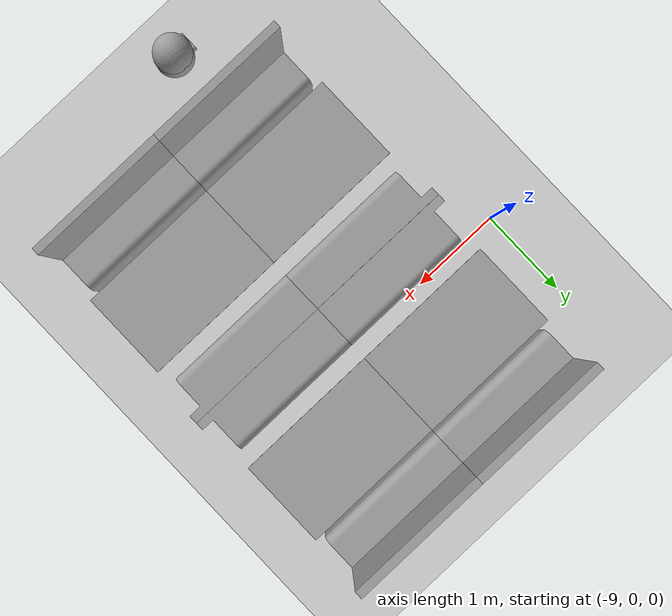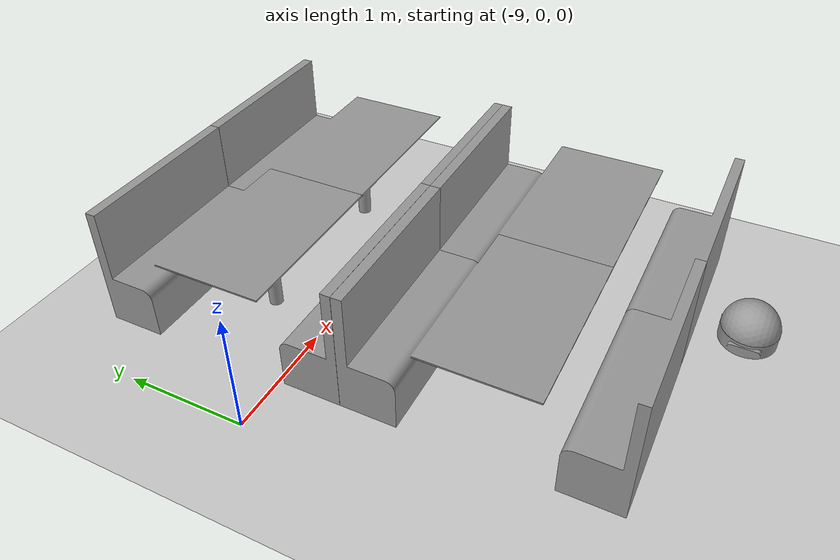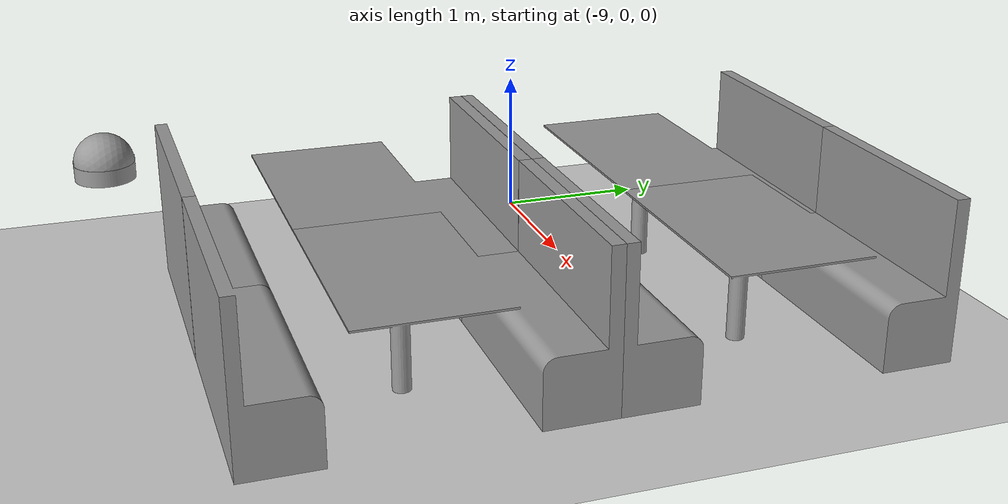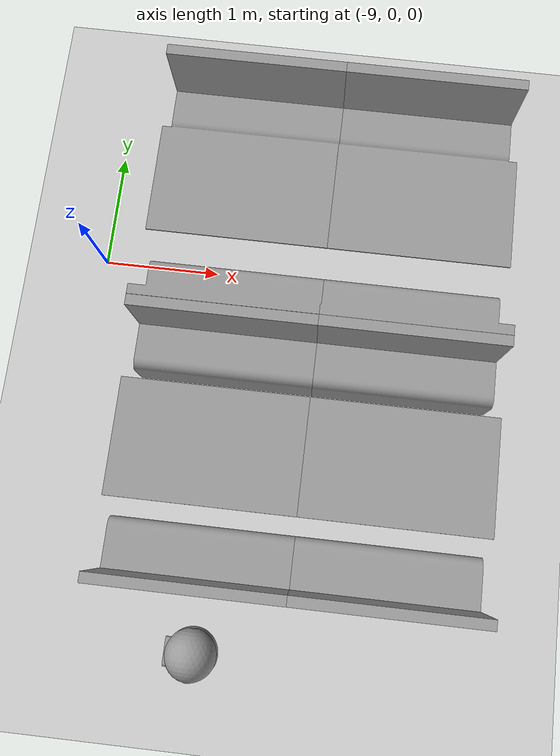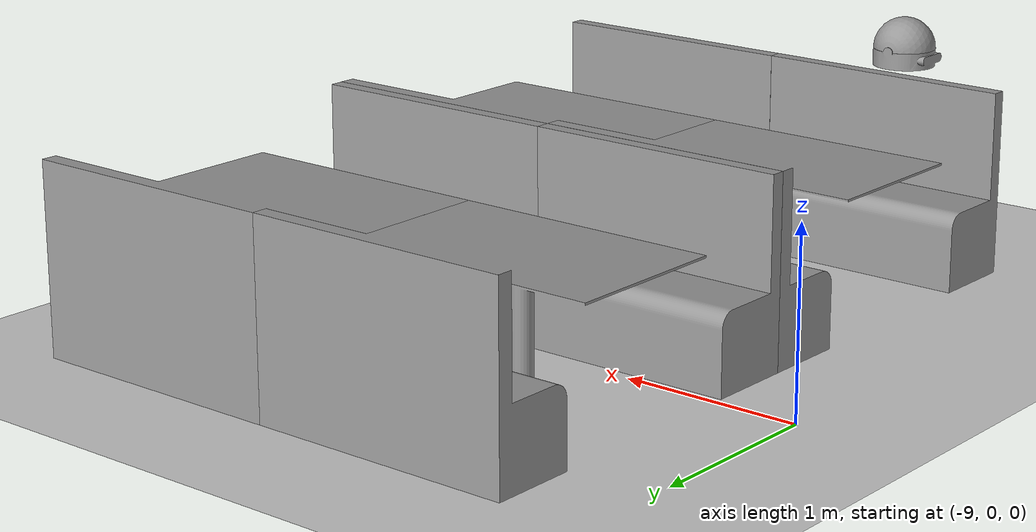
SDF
<sdf version="1.6">
 <world name="default">
  <model name="ground_plane">
   <static>1</static>
   <link name="link">
    <collision name="collision">
     <geometry><plane><normal>0 0 1</normal><size>100 100</size></plane></geometry>
     <surface><friction><ode><mu>100</mu><mu2>50</mu2></ode></friction></surface>
    </collision>
    <visual name="visual">
     <cast_shadows>0</cast_shadows>
     <geometry><plane><normal>0 0 1</normal><size>100 100</size></plane></geometry>
     <material>
      <script><uri>file://media/materials/scripts/gazebo.material</uri><name>Gazebo/Grey</name></script>
     </material>
    </visual>
   </link>
  </model>
  <model name="table_5">
   <link name="link_0">
    <inertial>
     <mass>1</mass>
     <inertia>
      <ixx>0.166667</ixx>
      <ixy>0</ixy>
      <ixz>0</ixz>
      <iyy>0.166667</iyy>
      <iyz>0</iyz>
      <izz>0.166667</izz>
     </inertia>
    </inertial>
    <visual name="visual">
     <pose>-1.9 -1.17 0 0 -0 0</pose>
     <geometry><mesh><uri>model://table/mesh/table.dae</uri><scale>0.6 0.6 0.6</scale></mesh></geometry>
     <material>
      <lighting>1</lighting>
      <script><uri>file://media/materials/scripts/gazebo.material</uri><name>Gazebo/Grey</name></script>
      <shader type="pixel"><normal_map>__default__</normal_map></shader>
      <ambient>0.3 0.3 0.3 1</ambient>
      <diffuse>0.7 0.7 0.7 1</diffuse>
      <specular>0.01 0.01 0.01 1</specular>
      <emissive>0 0 0 1</emissive>
     </material>
    </visual>
    <collision name="collision">
     <geometry><box><size>2.2 1.5 1.1</size></box></geometry>
     <surface>
      <friction>
       <ode><mu>1</mu><mu2>1</mu2><fdir1>0 0 0</fdir1><slip1>0</slip1><slip2>0</slip2></ode>
       <torsional>
        <coefficient>1</coefficient>
        <patch_radius>0</patch_radius>
        <surface_radius>0</surface_radius>
        <use_patch_radius>1</use_patch_radius>
        <ode><slip>0</slip></ode>
       </torsional>
      </friction>
      <bounce><restitution_coefficient>0</restitution_coefficient><threshold>1e+06</threshold></bounce>
      <contact>
       <collide_without_contact>0</collide_without_contact>
       <collide_without_contact_bitmask>1</collide_without_contact_bitmask>
       <collide_bitmask>1</collide_bitmask>
       <ode>
        <soft_cfm>0</soft_cfm>
        <soft_erp>0.2</soft_erp>
        <kp>1e+13</kp>
        <kd>1</kd>
        <max_vel>0.01</max_vel>
        <min_depth>0</min_depth>
       </ode>
       <bullet>
        <split_impulse>1</split_impulse>
        <split_impulse_penetration_threshold>-0.01</split_impulse_penetration_threshold>
        <soft_cfm>0</soft_cfm>
        <soft_erp>0.2</soft_erp>
        <kp>1e+13</kp>
        <kd>1</kd>
       </bullet>
      </contact>
     </surface>
    </collision>
   </link>
   <static>1</static>
   <pose>-6.29706 -1.59971 0 0 -0 1.5708</pose>
  </model>
  <model name="table_15">
   <link name="link_0">
    <inertial>
     <mass>1</mass>
     <inertia>
      <ixx>0.166667</ixx>
      <ixy>0</ixy>
      <ixz>0</ixz>
      <iyy>0.166667</iyy>
      <iyz>0</iyz>
      <izz>0.166667</izz>
     </inertia>
    </inertial>
    <visual name="visual">
     <pose>-1.9 -1.17 0 0 -0 0</pose>
     <geometry><mesh><uri>model://table/mesh/table.dae</uri><scale>0.6 0.6 0.6</scale></mesh></geometry>
     <material>
      <lighting>1</lighting>
      <script><uri>file://media/materials/scripts/gazebo.material</uri><name>Gazebo/Grey</name></script>
      <shader type="pixel"><normal_map>__default__</normal_map></shader>
      <ambient>0.3 0.3 0.3 1</ambient>
      <diffuse>0.7 0.7 0.7 1</diffuse>
      <specular>0.01 0.01 0.01 1</specular>
      <emissive>0 0 0 1</emissive>
     </material>
    </visual>
    <collision name="collision">
     <geometry><box><size>2.2 1.5 1.1</size></box></geometry>
     <surface>
      <friction>
       <ode><mu>1</mu><mu2>1</mu2><fdir1>0 0 0</fdir1><slip1>0</slip1><slip2>0</slip2></ode>
       <torsional>
        <coefficient>1</coefficient>
        <patch_radius>0</patch_radius>
        <surface_radius>0</surface_radius>
        <use_patch_radius>1</use_patch_radius>
        <ode><slip>0</slip></ode>
       </torsional>
      </friction>
      <bounce><restitution_coefficient>0</restitution_coefficient><threshold>1e+06</threshold></bounce>
      <contact>
       <collide_without_contact>0</collide_without_contact>
       <collide_without_contact_bitmask>1</collide_without_contact_bitmask>
       <collide_bitmask>1</collide_bitmask>
       <ode>
        <soft_cfm>0</soft_cfm>
        <soft_erp>0.2</soft_erp>
        <kp>1e+13</kp>
        <kd>1</kd>
        <max_vel>0.01</max_vel>
        <min_depth>0</min_depth>
       </ode>
       <bullet>
        <split_impulse>1</split_impulse>
        <split_impulse_penetration_threshold>-0.01</split_impulse_penetration_threshold>
        <soft_cfm>0</soft_cfm>
        <soft_erp>0.2</soft_erp>
        <kp>1e+13</kp>
        <kd>1</kd>
       </bullet>
      </contact>
     </surface>
    </collision>
   </link>
   <static>1</static>
   <pose>-6.29694 0.543606 0 0 -0 1.5708</pose>
  </model>
  <model name="table_17">
   <link name="link_0">
    <inertial>
     <mass>1</mass>
     <inertia>
      <ixx>0.166667</ixx>
      <ixy>0</ixy>
      <ixz>0</ixz>
      <iyy>0.166667</iyy>
      <iyz>0</iyz>
      <izz>0.166667</izz>
     </inertia>
    </inertial>
    <visual name="visual">
     <pose>-1.9 -1.17 0 0 -0 0</pose>
     <geometry><mesh><uri>model://table/mesh/table.dae</uri><scale>0.6 0.6 0.6</scale></mesh></geometry>
     <material>
      <lighting>1</lighting>
      <script><uri>file://media/materials/scripts/gazebo.material</uri><name>Gazebo/Grey</name></script>
      <shader type="pixel"><normal_map>__default__</normal_map></shader>
      <ambient>0.3 0.3 0.3 1</ambient>
      <diffuse>0.7 0.7 0.7 1</diffuse>
      <specular>0.01 0.01 0.01 1</specular>
      <emissive>0 0 0 1</emissive>
     </material>
    </visual>
    <collision name="collision">
     <geometry><box><size>2.2 1.5 1.1</size></box></geometry>
     <surface>
      <friction>
       <ode><mu>1</mu><mu2>1</mu2><fdir1>0 0 0</fdir1><slip1>0</slip1><slip2>0</slip2></ode>
       <torsional>
        <coefficient>1</coefficient>
        <patch_radius>0</patch_radius>
        <surface_radius>0</surface_radius>
        <use_patch_radius>1</use_patch_radius>
        <ode><slip>0</slip></ode>
       </torsional>
      </friction>
      <bounce><restitution_coefficient>0</restitution_coefficient><threshold>1e+06</threshold></bounce>
      <contact>
       <collide_without_contact>0</collide_without_contact>
       <collide_without_contact_bitmask>1</collide_without_contact_bitmask>
       <collide_bitmask>1</collide_bitmask>
       <ode>
        <soft_cfm>0</soft_cfm>
        <soft_erp>0.2</soft_erp>
        <kp>1e+13</kp>
        <kd>1</kd>
        <max_vel>0.01</max_vel>
        <min_depth>0</min_depth>
       </ode>
       <bullet>
        <split_impulse>1</split_impulse>
        <split_impulse_penetration_threshold>-0.01</split_impulse_penetration_threshold>
        <soft_cfm>0</soft_cfm>
        <soft_erp>0.2</soft_erp>
        <kp>1e+13</kp>
        <kd>1</kd>
       </bullet>
      </contact>
     </surface>
    </collision>
   </link>
   <static>1</static>
   <pose>-7.78266 0.543632 0 0 -0 1.5708</pose>
  </model>
  <model name="table_18">
   <link name="link_0">
    <inertial>
     <mass>1</mass>
     <inertia>
      <ixx>0.166667</ixx>
      <ixy>0</ixy>
      <ixz>0</ixz>
      <iyy>0.166667</iyy>
      <iyz>0</iyz>
      <izz>0.166667</izz>
     </inertia>
    </inertial>
    <visual name="visual">
     <pose>-1.9 -1.17 0 0 -0 0</pose>
     <geometry><mesh><uri>model://table/mesh/table.dae</uri><scale>0.6 0.6 0.6</scale></mesh></geometry>
     <material>
      <lighting>1</lighting>
      <script><uri>file://media/materials/scripts/gazebo.material</uri><name>Gazebo/Grey</name></script>
      <shader type="pixel"><normal_map>__default__</normal_map></shader>
      <ambient>0.3 0.3 0.3 1</ambient>
      <diffuse>0.7 0.7 0.7 1</diffuse>
      <specular>0.01 0.01 0.01 1</specular>
      <emissive>0 0 0 1</emissive>
     </material>
    </visual>
    <collision name="collision">
     <geometry><box><size>2.2 1.5 1.1</size></box></geometry>
     <surface>
      <friction>
       <ode><mu>1</mu><mu2>1</mu2><fdir1>0 0 0</fdir1><slip1>0</slip1><slip2>0</slip2></ode>
       <torsional>
        <coefficient>1</coefficient>
        <patch_radius>0</patch_radius>
        <surface_radius>0</surface_radius>
        <use_patch_radius>1</use_patch_radius>
        <ode><slip>0</slip></ode>
       </torsional>
      </friction>
      <bounce><restitution_coefficient>0</restitution_coefficient><threshold>1e+06</threshold></bounce>
      <contact>
       <collide_without_contact>0</collide_without_contact>
       <collide_without_contact_bitmask>1</collide_without_contact_bitmask>
       <collide_bitmask>1</collide_bitmask>
       <ode>
        <soft_cfm>0</soft_cfm>
        <soft_erp>0.2</soft_erp>
        <kp>1e+13</kp>
        <kd>1</kd>
        <max_vel>0.01</max_vel>
        <min_depth>0</min_depth>
       </ode>
       <bullet>
        <split_impulse>1</split_impulse>
        <split_impulse_penetration_threshold>-0.01</split_impulse_penetration_threshold>
        <soft_cfm>0</soft_cfm>
        <soft_erp>0.2</soft_erp>
        <kp>1e+13</kp>
        <kd>1</kd>
       </bullet>
      </contact>
     </surface>
    </collision>
   </link>
   <static>1</static>
   <pose>-7.78227 -1.60044 0 0 -0 1.5708</pose>
  </model>
  <model name="restaurantrobot_2">
   <link name="link_0">
    <pose>-0.075 0.035 -0.02 0 -0 0</pose>
    <inertial>
     <mass>1</mass>
     <inertia><ixx>0.145833</ixx><ixy>0</ixy><ixz>0</ixz><iyy>0.145833</iyy><iyz>0</iyz><izz>0.125</izz></inertia>
    </inertial>
    <visual name="visual">
     <geometry><mesh><uri>model://robot/mesh/body01.dae</uri></mesh></geometry>
     <material>
      <lighting>1</lighting>
      <script><uri>file://media/materials/scripts/gazebo.material</uri><name>Gazebo/Grey</name></script>
      <shader type="pixel"><normal_map>__default__</normal_map></shader>
      <ambient>0.4 0.4 0.4 1</ambient>
      <diffuse>0.7 0.7 0.7 1</diffuse>
      <specular>1 1 1 0</specular>
      <emissive>0 0 0 1</emissive>
     </material>
    </visual>
    <collision name="collision">
     <pose>0 0 0.05 0 -0 0</pose>
     <geometry><cylinder><radius>0.18</radius><length>0.1</length></cylinder></geometry>
     <surface>
      <friction>
       <ode><mu>1</mu><mu2>1</mu2><fdir1>0 0 0</fdir1><slip1>0</slip1><slip2>0</slip2></ode>
       <torsional>
        <coefficient>1</coefficient>
        <patch_radius>0</patch_radius>
        <surface_radius>0</surface_radius>
        <use_patch_radius>1</use_patch_radius>
        <ode><slip>0</slip></ode>
       </torsional>
      </friction>
      <bounce><restitution_coefficient>0</restitution_coefficient><threshold>1e+06</threshold></bounce>
      <contact>
       <collide_without_contact>0</collide_without_contact>
       <collide_without_contact_bitmask>1</collide_without_contact_bitmask>
       <collide_bitmask>1</collide_bitmask>
       <ode>
        <soft_cfm>0</soft_cfm>
        <soft_erp>0.2</soft_erp>
        <kp>1e+13</kp>
        <kd>1</kd>
        <max_vel>0.01</max_vel>
        <min_depth>0</min_depth>
       </ode>
       <bullet>
        <split_impulse>1</split_impulse>
        <split_impulse_penetration_threshold>-0.01</split_impulse_penetration_threshold>
        <soft_cfm>0</soft_cfm>
        <soft_erp>0.2</soft_erp>
        <kp>1e+13</kp>
        <kd>1</kd>
       </bullet>
      </contact>
     </surface>
    </collision>
   </link>
   <link name="link_1">
    <pose>-0.075 -0.105 0.012 -1.5708 0 0</pose>
    <inertial>
     <mass>1.23801</mass>
     <inertia>
      <ixx>0.00040938</ixx>
      <ixy>0</ixy>
      <ixz>0</ixz>
      <iyy>0.00040938</iyy>
      <iyz>0</iyz>
      <izz>0.00068979</izz>
     </inertia>
    </inertial>
    <visual name="visual">
     <geometry><cylinder><radius>0.0333821</radius><length>0.025</length></cylinder></geometry>
     <material>
      <lighting>1</lighting>
      <script><uri>file://media/materials/scripts/gazebo.material</uri><name>Gazebo/Grey</name></script>
      <shader type="pixel"><normal_map>__default__</normal_map></shader>
      <ambient>0.3 0.3 0.3 1</ambient>
      <diffuse>0.7 0.7 0.7 1</diffuse>
      <specular>0.01 0.01 0.01 1</specular>
      <emissive>0 0 0 1</emissive>
     </material>
    </visual>
    <collision name="collision">
     <geometry><cylinder><radius>0.034</radius><length>0.025</length></cylinder></geometry>
     <surface>
      <friction>
       <ode><mu>1</mu><mu2>1</mu2><fdir1>0 0 0</fdir1><slip1>0</slip1><slip2>0</slip2></ode>
       <torsional>
        <coefficient>1</coefficient>
        <patch_radius>0</patch_radius>
        <surface_radius>0</surface_radius>
        <use_patch_radius>1</use_patch_radius>
        <ode><slip>0</slip></ode>
       </torsional>
      </friction>
      <bounce><restitution_coefficient>0</restitution_coefficient><threshold>1e+06</threshold></bounce>
      <contact>
       <collide_without_contact>0</collide_without_contact>
       <collide_without_contact_bitmask>1</collide_without_contact_bitmask>
       <collide_bitmask>1</collide_bitmask>
       <ode>
        <soft_cfm>0</soft_cfm>
        <soft_erp>0.2</soft_erp>
        <kp>1e+13</kp>
        <kd>1</kd>
        <max_vel>0.01</max_vel>
        <min_depth>0</min_depth>
       </ode>
       <bullet>
        <split_impulse>1</split_impulse>
        <split_impulse_penetration_threshold>-0.01</split_impulse_penetration_threshold>
        <soft_cfm>0</soft_cfm>
        <soft_erp>0.2</soft_erp>
        <kp>1e+13</kp>
        <kd>1</kd>
       </bullet>
      </contact>
     </surface>
    </collision>
   </link>
   <link name="link_1_0">
    <pose>-0.075 0.035 0.17 0 -0 0</pose>
    <inertial>
     <mass>1</mass>
     <inertia><ixx>0.145833</ixx><ixy>0</ixy><ixz>0</ixz><iyy>0.145833</iyy><iyz>0</iyz><izz>0.125</izz></inertia>
    </inertial>
    <visual name="visual">
     <pose>0 0 -0.09 0 -0 0</pose>
     <geometry><mesh><uri>model://robot/mesh/cover.dae</uri></mesh></geometry>
     <material>
      <lighting>1</lighting>
      <script><uri>file://media/materials/scripts/gazebo.material</uri><name>Gazebo/Grey</name></script>
      <shader type="pixel"><normal_map>__default__</normal_map></shader>
      <ambient>0.3 0.3 0.3 1</ambient>
      <diffuse>0.7 0.7 0.7 1</diffuse>
      <specular>0.01 0.01 0.01 1</specular>
      <emissive>0 0 0 1</emissive>
     </material>
    </visual>
    <collision name="collision">
     <geometry><cylinder><radius>0.18</radius><length>0.18</length></cylinder></geometry>
     <surface>
      <friction>
       <ode><mu>1</mu><mu2>1</mu2><fdir1>0 0 0</fdir1><slip1>0</slip1><slip2>0</slip2></ode>
       <torsional>
        <coefficient>1</coefficient>
        <patch_radius>0</patch_radius>
        <surface_radius>0</surface_radius>
        <use_patch_radius>1</use_patch_radius>
        <ode><slip>0</slip></ode>
       </torsional>
      </friction>
      <bounce><restitution_coefficient>0</restitution_coefficient><threshold>1e+06</threshold></bounce>
      <contact>
       <collide_without_contact>0</collide_without_contact>
       <collide_without_contact_bitmask>1</collide_without_contact_bitmask>
       <collide_bitmask>1</collide_bitmask>
       <ode>
        <soft_cfm>0</soft_cfm>
        <soft_erp>0.2</soft_erp>
        <kp>1e+13</kp>
        <kd>1</kd>
        <max_vel>0.01</max_vel>
        <min_depth>0</min_depth>
       </ode>
       <bullet>
        <split_impulse>1</split_impulse>
        <split_impulse_penetration_threshold>-0.01</split_impulse_penetration_threshold>
        <soft_cfm>0</soft_cfm>
        <soft_erp>0.2</soft_erp>
        <kp>1e+13</kp>
        <kd>1</kd>
       </bullet>
      </contact>
     </surface>
    </collision>
   </link>
   <link name="link_1_clone">
    <pose>-0.075 0.175 0.012 -1.5708 0 0</pose>
    <inertial>
     <mass>1.23801</mass>
     <inertia>
      <ixx>0.00040938</ixx>
      <ixy>0</ixy>
      <ixz>0</ixz>
      <iyy>0.00040938</iyy>
      <iyz>0</iyz>
      <izz>0.00068979</izz>
     </inertia>
    </inertial>
    <visual name="visual">
     <geometry><cylinder><radius>0.034</radius><length>0.025</length></cylinder></geometry>
     <material>
      <lighting>1</lighting>
      <script><uri>file://media/materials/scripts/gazebo.material</uri><name>Gazebo/Grey</name></script>
      <shader type="pixel"><normal_map>__default__</normal_map></shader>
      <ambient>0.3 0.3 0.3 1</ambient>
      <diffuse>0.7 0.7 0.7 1</diffuse>
      <specular>0.01 0.01 0.01 1</specular>
      <emissive>0 0 0 1</emissive>
     </material>
    </visual>
    <collision name="collision">
     <geometry><cylinder><radius>0.034</radius><length>0.025</length></cylinder></geometry>
     <surface>
      <friction>
       <ode><mu>1</mu><mu2>1</mu2><fdir1>0 0 0</fdir1><slip1>0</slip1><slip2>0</slip2></ode>
       <torsional>
        <coefficient>1</coefficient>
        <patch_radius>0</patch_radius>
        <surface_radius>0</surface_radius>
        <use_patch_radius>1</use_patch_radius>
        <ode><slip>0</slip></ode>
       </torsional>
      </friction>
      <bounce><restitution_coefficient>0</restitution_coefficient><threshold>1e+06</threshold></bounce>
      <contact>
       <collide_without_contact>0</collide_without_contact>
       <collide_without_contact_bitmask>1</collide_without_contact_bitmask>
       <collide_bitmask>1</collide_bitmask>
       <ode>
        <soft_cfm>0</soft_cfm>
        <soft_erp>0.2</soft_erp>
        <kp>1e+13</kp>
        <kd>1</kd>
        <max_vel>0.01</max_vel>
        <min_depth>0</min_depth>
       </ode>
       <bullet>
        <split_impulse>1</split_impulse>
        <split_impulse_penetration_threshold>-0.01</split_impulse_penetration_threshold>
        <soft_cfm>0</soft_cfm>
        <soft_erp>0.2</soft_erp>
        <kp>1e+13</kp>
        <kd>1</kd>
       </bullet>
      </contact>
     </surface>
    </collision>
   </link>
   <link name="link_2">
    <pose>0.065 0.035 -0.012 0 -0 0</pose>
    <inertial>
     <mass>1.585e-05</mass>
     <inertia><ixx>0</ixx><ixy>0</ixy><ixz>0</ixz><iyy>0</iyy><iyz>0</iyz><izz>0</izz></inertia>
    </inertial>
    <visual name="visual">
     <geometry><sphere><radius>0.01</radius></sphere></geometry>
     <material>
      <lighting>1</lighting>
      <script><uri>file://media/materials/scripts/gazebo.material</uri><name>Gazebo/Grey</name></script>
      <shader type="pixel"><normal_map>__default__</normal_map></shader>
      <ambient>0.3 0.3 0.3 1</ambient>
      <diffuse>0.7 0.7 0.7 1</diffuse>
      <specular>0.01 0.01 0.01 1</specular>
      <emissive>0 0 0 1</emissive>
     </material>
    </visual>
    <collision name="collision">
     <geometry><sphere><radius>0.01</radius></sphere></geometry>
     <surface>
      <friction>
       <ode><mu>1</mu><mu2>1</mu2><fdir1>0 0 0</fdir1><slip1>0</slip1><slip2>0</slip2></ode>
       <torsional>
        <coefficient>1</coefficient>
        <patch_radius>0</patch_radius>
        <surface_radius>0</surface_radius>
        <use_patch_radius>1</use_patch_radius>
        <ode><slip>0</slip></ode>
       </torsional>
      </friction>
      <bounce><restitution_coefficient>0</restitution_coefficient><threshold>1e+06</threshold></bounce>
      <contact>
       <collide_without_contact>0</collide_without_contact>
       <collide_without_contact_bitmask>1</collide_without_contact_bitmask>
       <collide_bitmask>1</collide_bitmask>
       <ode>
        <soft_cfm>0</soft_cfm>
        <soft_erp>0.2</soft_erp>
        <kp>1e+13</kp>
        <kd>1</kd>
        <max_vel>0.01</max_vel>
        <min_depth>0</min_depth>
       </ode>
       <bullet>
        <split_impulse>1</split_impulse>
        <split_impulse_penetration_threshold>-0.01</split_impulse_penetration_threshold>
        <soft_cfm>0</soft_cfm>
        <soft_erp>0.2</soft_erp>
        <kp>1e+13</kp>
        <kd>1</kd>
       </bullet>
      </contact>
     </surface>
    </collision>
   </link>
   <link name="link_2_clone">
    <pose>-0.215 0.035 -0.012 0 -0 0</pose>
    <inertial>
     <mass>1.585e-05</mass>
     <inertia><ixx>0</ixx><ixy>0</ixy><ixz>0</ixz><iyy>0</iyy><iyz>0</iyz><izz>0</izz></inertia>
    </inertial>
    <visual name="visual">
     <geometry><sphere><radius>0.01</radius></sphere></geometry>
     <material>
      <lighting>1</lighting>
      <script><uri>file://media/materials/scripts/gazebo.material</uri><name>Gazebo/Grey</name></script>
      <shader type="pixel"><normal_map>__default__</normal_map></shader>
      <ambient>0.3 0.3 0.3 1</ambient>
      <diffuse>0.7 0.7 0.7 1</diffuse>
      <specular>0.01 0.01 0.01 1</specular>
      <emissive>0 0 0 1</emissive>
     </material>
    </visual>
    <collision name="collision">
     <geometry><sphere><radius>0.01</radius></sphere></geometry>
     <surface>
      <friction>
       <ode><mu>1</mu><mu2>1</mu2><fdir1>0 0 0</fdir1><slip1>0</slip1><slip2>0</slip2></ode>
       <torsional>
        <coefficient>1</coefficient>
        <patch_radius>0</patch_radius>
        <surface_radius>0</surface_radius>
        <use_patch_radius>1</use_patch_radius>
        <ode><slip>0</slip></ode>
       </torsional>
      </friction>
      <bounce><restitution_coefficient>0</restitution_coefficient><threshold>1e+06</threshold></bounce>
      <contact>
       <collide_without_contact>0</collide_without_contact>
       <collide_without_contact_bitmask>1</collide_without_contact_bitmask>
       <collide_bitmask>1</collide_bitmask>
       <ode>
        <soft_cfm>0</soft_cfm>
        <soft_erp>0.2</soft_erp>
        <kp>1e+13</kp>
        <kd>1</kd>
        <max_vel>0.01</max_vel>
        <min_depth>0</min_depth>
       </ode>
       <bullet>
        <split_impulse>1</split_impulse>
        <split_impulse_penetration_threshold>-0.01</split_impulse_penetration_threshold>
        <soft_cfm>0</soft_cfm>
        <soft_erp>0.2</soft_erp>
        <kp>1e+13</kp>
        <kd>1</kd>
       </bullet>
      </contact>
     </surface>
    </collision>
   </link>
   <joint name="link_0_JOINT_0" type="revolute">
    <parent>link_0</parent>
    <child>link_1</child>
    <axis>
     <xyz>0 0 -1</xyz>
     <use_parent_model_frame>0</use_parent_model_frame>
     <limit>
      <lower>-1.79769e+308</lower>
      <upper>1.79769e+308</upper>
      <effort>-1</effort>
      <velocity>-1</velocity>
     </limit>
     <dynamics>
      <spring_reference>0</spring_reference>
      <spring_stiffness>0</spring_stiffness>
      <damping>0</damping>
     </dynamics>
    </axis>
    <physics>
     <ode><limit><cfm>0</cfm><erp>0.2</erp></limit><suspension><cfm>0</cfm><erp>0.2</erp></suspension></ode>
    </physics>
   </joint>
   <joint name="link_0_JOINT_1" type="revolute">
    <parent>link_0</parent>
    <child>link_1_clone</child>
    <axis>
     <xyz>0 0 1</xyz>
     <use_parent_model_frame>0</use_parent_model_frame>
     <limit>
      <lower>-1.79769e+308</lower>
      <upper>1.79769e+308</upper>
      <effort>-1</effort>
      <velocity>-1</velocity>
     </limit>
     <dynamics>
      <spring_reference>0</spring_reference>
      <spring_stiffness>0</spring_stiffness>
      <damping>0</damping>
     </dynamics>
    </axis>
    <physics>
     <ode><limit><cfm>0</cfm><erp>0.2</erp></limit><suspension><cfm>0</cfm><erp>0.2</erp></suspension></ode>
    </physics>
   </joint>
   <joint name="link_0_JOINT_2" type="ball">
    <parent>link_0</parent>
    <child>link_2</child>
    <physics>
     <ode><limit><cfm>0</cfm><erp>0.2</erp></limit><suspension><cfm>0</cfm><erp>0.2</erp></suspension></ode>
    </physics>
   </joint>
   <joint name="link_0_JOINT_3" type="ball">
    <parent>link_0</parent>
    <child>link_2_clone</child>
    <physics>
     <ode><limit><cfm>0</cfm><erp>0.2</erp></limit><suspension><cfm>0</cfm><erp>0.2</erp></suspension></ode>
    </physics>
   </joint>
   <joint name="link_0_JOINT_4" type="revolute">
    <parent>link_0</parent>
    <child>link_1_0</child>
    <axis>
     <xyz>0 1 0</xyz>
     <use_parent_model_frame>0</use_parent_model_frame>
     <limit>
      <lower>-1.79769e+308</lower>
      <upper>1.79769e+308</upper>
      <effort>-1</effort>
      <velocity>-1</velocity>
     </limit>
     <dynamics>
      <spring_reference>0</spring_reference>
      <spring_stiffness>0</spring_stiffness>
      <damping>0</damping>
     </dynamics>
    </axis>
    <physics>
     <ode><limit><cfm>0</cfm><erp>0.2</erp></limit><suspension><cfm>0</cfm><erp>0.2</erp></suspension></ode>
    </physics>
   </joint>
   <static>0</static>
   <allow_auto_disable>0</allow_auto_disable>
   <pose>-7.73505 -3.02553 1.022 0 3e-06 3.14159</pose>
  </model>
 </world>
</sdf>
